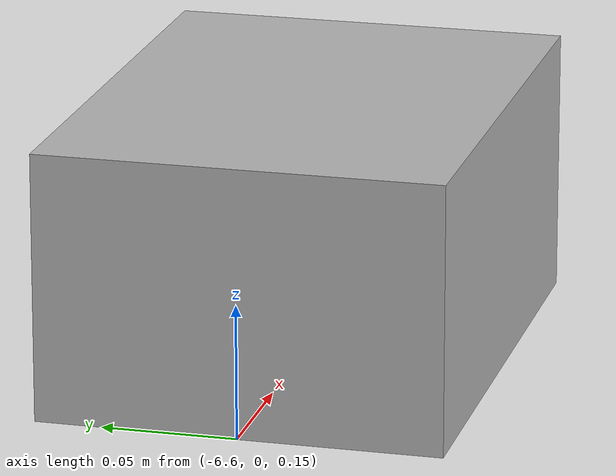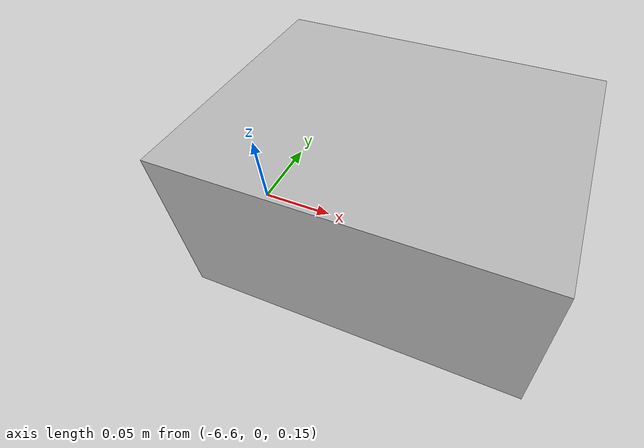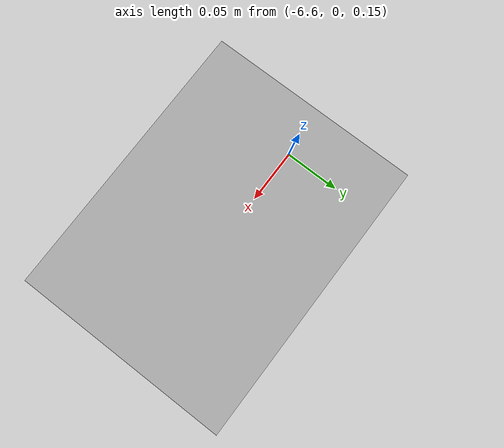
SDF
<?xml version="1.0"?>
<sdf version="1.9">
  <!-- TASK-SIM-008: task-owned semantic regions and Brake ECU proxy asset. -->
  <world name="sim008_normal_system_world">
    <plugin filename="gz-sim-physics-system" name="gz::sim::systems::Physics"/>
    <model name="brake_ecu_type_b_001"><static>true</static><pose>-6.5 0 0.2 0 0 0</pose>
      <link name="body"><collision name="collision"><geometry><box><size>0.2 0.15 0.1</size></box></geometry></collision><visual name="visual"><geometry><box><size>0.2 0.15 0.1</size></box></geometry></visual></link>
    </model>
  </world>
</sdf>
